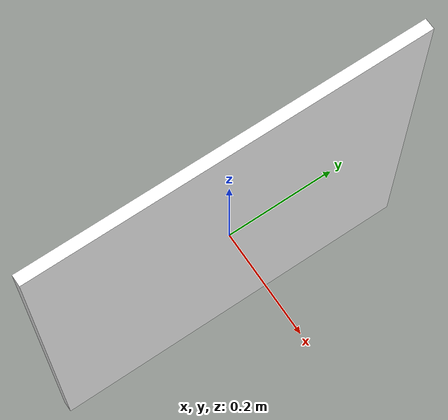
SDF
<?xml version="1.0"?>
<sdf version="1.6">
  <model name="warehouse_aruco_marker_00">
    <static>true</static>
    <link name="link">
      <visual name="marker_visual">
        <cast_shadows>false</cast_shadows>
        <geometry>
          <box>
            <size>0.02 0.70 0.70</size>
          </box>
        </geometry>
        <material>
          <ambient>1 1 1 1</ambient>
          <diffuse>1 1 1 1</diffuse>
          <specular>0.1 0.1 0.1 1</specular>
          <pbr>
            <metal>
              <albedo_map>materials/textures/aruco_00.png</albedo_map>
              <metalness>0.0</metalness>
              <roughness>0.8</roughness>
            </metal>
          </pbr>
        </material>
      </visual>
    </link>
  </model>
</sdf>
